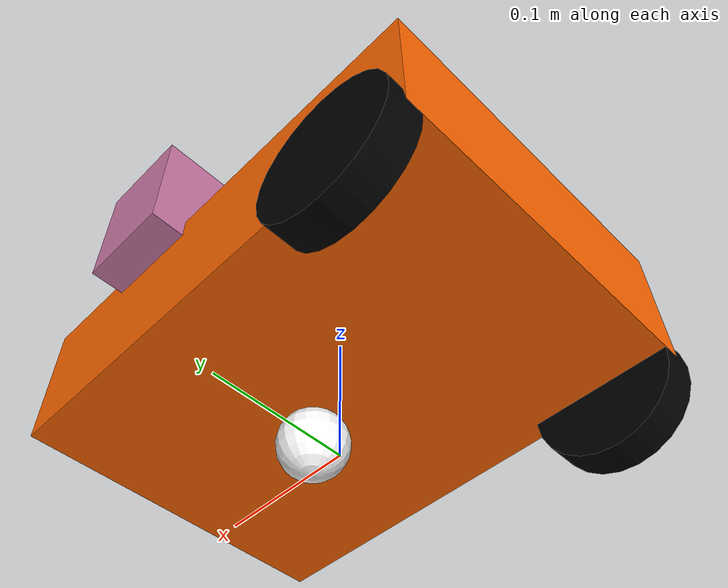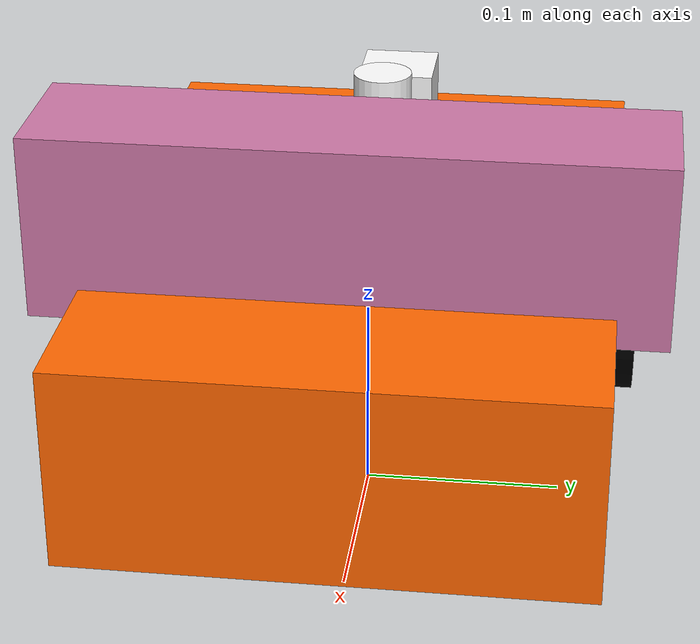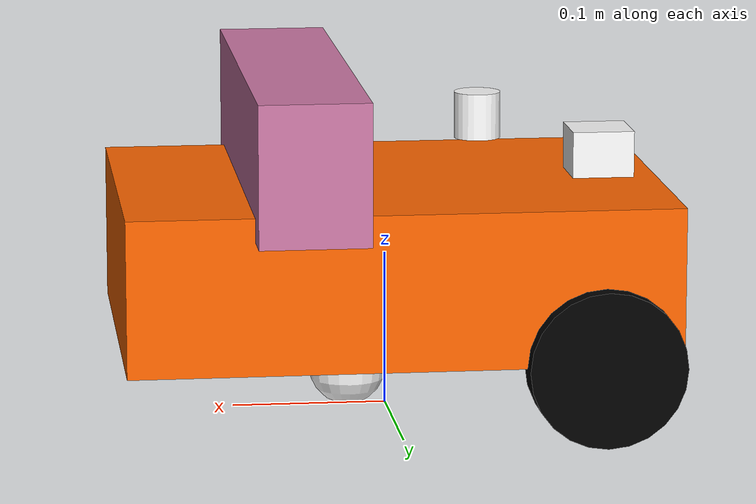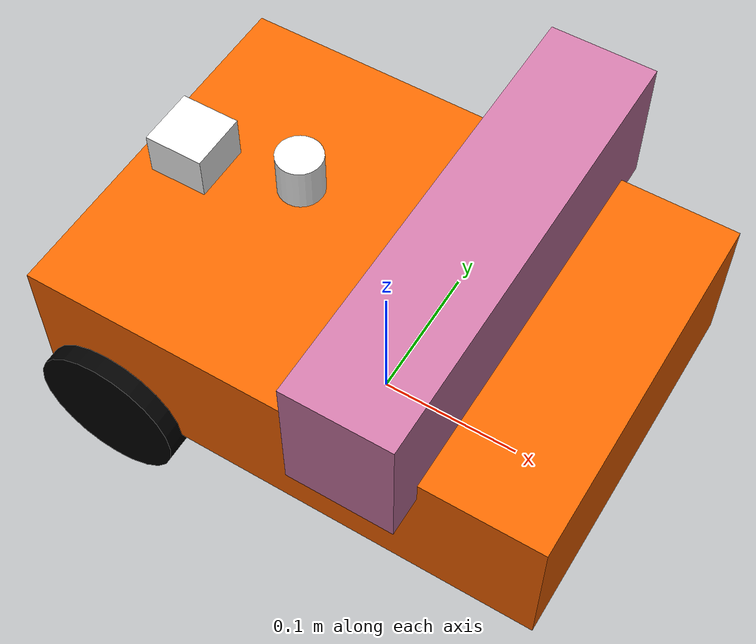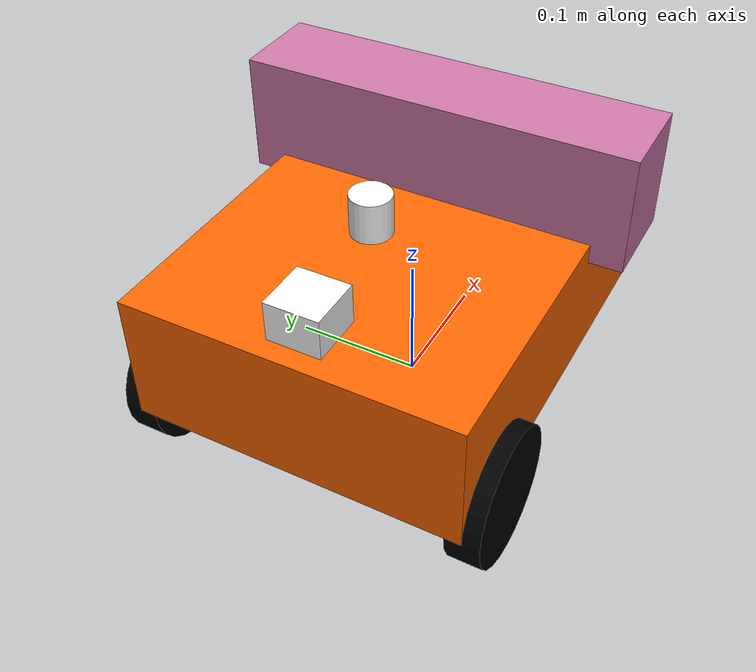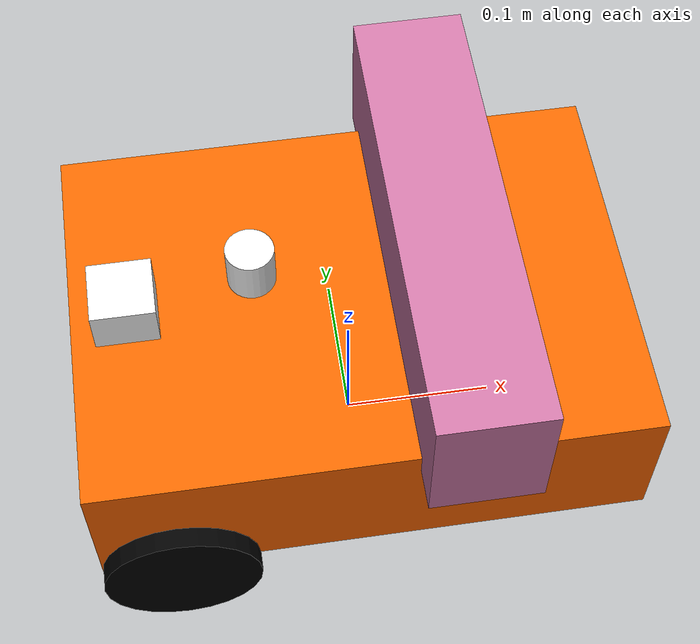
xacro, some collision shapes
<?xml version="1.0"?>
<robot name="mbot" xmlns:xacro="http://www.ros.org/wiki/xacro">

    <xacro:include filename="$(find mbot_description)/urdf/mbot_base_gazebo.xacro" />
    <xacro:include filename="$(find mbot_description)/urdf/sensors/kinect_gazebo.xacro" />
    <xacro:include filename="$(find mbot_description)/urdf/sensors/lidar_gazebo.xacro" />

    <mbot_base_gazebo/>

    <xacro:property name="kinect_offset_x" value="0.06" />
    <xacro:property name="kinect_offset_y" value="0" />
    <xacro:property name="kinect_offset_z" value="0.08" />
    <!-- kinect -->
    <joint name="kinect_joint" type="fixed">
        <origin xyz="${kinect_offset_x} ${kinect_offset_y} ${kinect_offset_z}" rpy="0 0 0" />
        <parent link="base_link"/>
        <child link="kinect_link"/>
    </joint>

    <kinect_camera/>

    <xacro:property name="lidar_offset_x" value="-0.06" />
    <xacro:property name="lidar_offset_y" value="0" />
    <xacro:property name="lidar_offset_z" value="0.09" />

    <!-- lidar -->
    <joint name="lidar_joint" type="fixed">
        <origin xyz="${lidar_offset_x} ${lidar_offset_y} ${lidar_offset_z}" rpy="0 0 0" />
        <parent link="base_link"/>
        <child link="laser_link"/>
    </joint>

    <rplidar />

</robot>

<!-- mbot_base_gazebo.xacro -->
<robot name="mbot" xmlns:xacro="http://www.ros.org/wiki/xacro">

 	<!-- PROPERTY LIST -->
	<xacro:property name="M_PI" value="3.1415926"/>
	<xacro:property name="base_mass"   value="0.02" />
	<xacro:property name="base_length" value="0.35"/>
    	<xacro:property name="base_width" value="0.25"/>
    	<xacro:property name="base_hight" value="0.1"/>

	<xacro:property name="box_mass"   value="0.005" />
	<xacro:property name="box_length" value="0.04"/>
    	<xacro:property name="box_width" value="0.04"/>
    	<xacro:property name="box_hight" value="0.03"/>

    	<xacro:property name="wheel_mass"   value="0.002" />
    	<xacro:property name="wheel_radius" value="0.05"/>
    	<xacro:property name="wheel_length" value="0.025"/>

        <xacro:property name="caster_mass"    value="0.0005" />
        <xacro:property name="caster_radius"  value="0.025"/> <!-- wheel_radius - ( base_length/2 - wheel_joint_z) -->
        <xacro:property name="caster_joint_x" value="0.18"/>

	<!-- Defining the colors used in this robot -->
    	<material name="yellow">
        	<color rgba="1 0.4 0 1"/>
    	</material>
    	<material name="black">
        	<color rgba="0 0 0 0.95"/>
    	</material>
	<material name="white">
                <color rgba="1 1 1 1"/>
        </material>

	<!-- Macro for inertia matrix -->
	<xacro:macro name="cylinder_inertial_matrix" params="m r h">
        	<inertial>
            		<mass value="${m}" />
            		<inertia ixx="${m*(3*r*r+h*h)/12}" ixy="0" ixz="0"
				 iyx="0" iyy="${m*(3*r*r+h*h)/12}" iyz="0"
                		 izx="0" izy="0" izz="${m*r*r/2}" />
        	</inertial>
    	</xacro:macro>

	<!-- Macro for inertia matrix -->
	<xacro:macro name="box_inertial_matrix" params="m l w h">
        	<inertial>
            		<mass value="${m}" />
            		<inertia ixx="${m*(w*w+h*h)/12}" ixy="0" ixz="0"
				 iyx="0" iyy="${m*(l*l+h*h)/12}" iyz="0"
                		 izx="0" izy="0" izz="${m*(l*l+w*w)/12}" />
        	</inertial>
    	</xacro:macro>

	<!-- Macro for robot wheel -->
	<xacro:macro name="wheel" params="prefix base reflectx reflecty">

	<joint name="${prefix}_wheel_joint" type="continuous">
		<origin xyz="${reflectx*(base_length/2-wheel_radius)} ${reflecty*(base_width/2)} ${-base_hight/2}" rpy="0 0 0"/>
        	<parent link="${base}"/>
        	<child link="${prefix}_wheel_link"/>
        	<axis xyz="0 1 0"/>
    	</joint>

	<link name="${prefix}_wheel_link">
        	<visual>
            		<origin xyz="0 0 0" rpy="${M_PI/2} 0 0" />
            		<geometry>
                		<cylinder radius="${wheel_radius}" length = "${wheel_length}"/>
            		</geometry>
            		<material name="black" />
        	</visual>
		<collision>
                	<origin xyz="0 0 0" rpy="${M_PI/2} 0 0" />
                	<geometry>
                	    <cylinder radius="${wheel_radius}" length = "${wheel_length}"/>
                	</geometry>
            	</collision>
		<cylinder_inertial_matrix  m="${wheel_mass}" r="${wheel_radius}" h="${wheel_length}" />
    	</link>

	<gazebo reference="${prefix}_wheel_link">
		<material>Gazebo/Gray</material>
        </gazebo>

    <!-- Macro for robot caster -->
    <xacro:macro name="caster" params="prefix reflect">
        <joint name="${prefix}_caster_joint" type="continuous">
            <origin xyz="${reflect*(base_length/2-3*wheel_radius)} 0 ${-base_hight/2 - caster_radius}" rpy="0 0 0"/>
            <parent link="base_link"/>
            <child link="${prefix}_caster_link"/>
            <axis xyz="0 1 0"/>
        </joint>

        <link name="${prefix}_caster_link">
            <visual>
                <origin xyz="0 0 0" rpy="0 0 0"/>
                <geometry>
                    <sphere radius="${caster_radius}" />
                </geometry>
                <material name="white" />
            </visual>
            <collision>
                <origin xyz="0 0 0" rpy="0 0 0"/>
                <geometry>
                    <sphere radius="${caster_radius}" />
                </geometry>
            </collision>
            <sphere_inertial_matrix  m="${caster_mass}" r="${caster_radius}" />
        </link>

        <gazebo reference="${prefix}_caster_link">
            <material>Gazebo/White</material>
        </gazebo>
    </xacro:macro>

	<!-- Transmission is important to link the joints and the controller -->
        <transmission name="${prefix}_wheel_joint_trans">
		<type>transmission_interface/SimpleTransmission</type>
	        <joint name="${prefix}_wheel_joint" >
			<hardwareInterface>hardware_interface/VelocityJointInterface</hardwareInterface>
		</joint>
            	<actuator name="${prefix}_wheel_joint_motor">
                	<hardwareInterface>hardware_interface/VelocityJointInterface</hardwareInterface>
                	<mechanicalReduction>1</mechanicalReduction>
            	</actuator>
        </transmission>

	</xacro:macro>

	<xacro:macro name="mbot_base_gazebo">
		<link name="base_footprint">
	            <visual>
	                <origin xyz="0 0 0" rpy="0 0 0" />
	                <geometry>
	                    <box size="0.001 0.001 0.001" />
	                </geometry>
	            </visual>
	        </link>

        	<gazebo reference="base_footprint">
            		<turnGravityOff>false</turnGravityOff>
        	</gazebo>

        	<joint name="base_footprint_joint" type="fixed">
            		<origin xyz="0 0 ${base_hight/2 + wheel_radius}" rpy="0 0 0" />
            		<parent link="base_footprint"/>
            		<child link="base_link" />
        	</joint>

		<link name="base_link">
			<visual>
 				<origin xyz=" 0 0 0" rpy="0 0 0" />
            			<geometry>
                			<box size="${base_length} ${base_width} ${base_hight}" />
            			</geometry>
            			<material name="yellow"/>
			</visual>
			<collision>
                		<origin xyz=" 0 0 0" rpy="0 0 0" />
                		<geometry>
                    			<box size="${base_length} ${base_width} ${base_hight}" />
               			</geometry>
            		</collision>
			<box_inertial_matrix  m="${base_mass}" l="${base_length}" w="${base_width}" h="${base_hight}" />
		</link>

		<gazebo reference="base_link">
			<material>Gazebo/Blue</material>
        	</gazebo>

		<joint name="box_link" type="fixed">
          		<origin xyz="-0.14 0 ${base_hight/2 + box_hight/2}" rpy="0 0 0" />
            		<parent link="base_link"/>
            		<child link="box_link" />
        	</joint>

		<link name="box_link">
			<visual>
 				<origin xyz=" 0 0 0" rpy="0 0 0" />
            			<geometry>
                			<box size="${box_length} ${box_width} ${box_hight}" />
            			</geometry>
            			<material name="white"/>
			</visual>
			<collision>
                		<origin xyz=" 0 0 0" rpy="0 0 0" />
                		<geometry>
                    			<box size="${box_length} ${box_width} ${box_hight}" />
               			</geometry>
            		</collision>
			<box_inertial_matrix  m="${box_mass}" l="${box_length}" w="${box_width}" h="${box_hight}" />
		</link>

		<gazebo reference="box_link">
			<material>Gazebo/White</material>
        	</gazebo>

		<wheel prefix="back_left" base="base_link" reflectx="-1" reflecty="1"/>
        	<wheel prefix="back_right" base="base_link" reflectx="-1" reflecty="-1"/>
        <caster prefix="front" reflect="1"/>

		<!-- controller -->
        	<gazebo>
  			<plugin name="skid_steer_drive_controller" filename="libgazebo_ros_skid_steer_drive.so">
				<rosDebugLevel>Debug</rosDebugLevel>
                		<publishWheelTF>true</publishWheelTF>
				<publishTf>true</publishTf>
                		<publishWheelJointState>true</publishWheelJointState>
                		<alwaysOn>true</alwaysOn>
				<legacyMode>true</legacyMode>
    				<updateRate>100.0</updateRate>
    				<robotNamespace>/mbot</robotNamespace>
    				<leftRearJoint>back_left_wheel_joint</leftRearJoint>
    				<rightRearJoint>back_right_wheel_joint</rightRearJoint>
    				<wheelSeparation>${base_width}</wheelSeparation>
    				<wheelDiameter>${2*wheel_radius}</wheelDiameter>
    				<robotBaseFrame>base_footprint</robotBaseFrame>
    				<torque>30</torque>
    				<commandTopic>cmd_vel</commandTopic>
                		<odometryFrame>odom</odometryFrame>
                		<odometryTopic>odom</odometryTopic>
    				<broadcastTF>true</broadcastTF>
  			</plugin>
		</gazebo>

	</xacro:macro>
</robot>

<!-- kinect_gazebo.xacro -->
<robot xmlns:xacro="http://www.ros.org/wiki/xacro" name="laser">
	<xacro:macro name="kinect_camera" params="prefix:=kinect">
		<link name="${prefix}_link">
	        	<visual>
        	    	<origin xyz="0 0 0" rpy="0 0 ${M_PI/2}"/>
	            		<geometry>
        	        		<mesh filename="package://mbot_description/meshes/kinect.dae" />
        	    		</geometry>
        		</visual>
			<collision>
		                <geometry>
		                	<box size="0.07 0.3 0.09"/>
		                </geometry>
		        </collision>
    		</link>

		<joint name="${prefix}_optical_joint" type="fixed">
            		<origin xyz="0 0 0" rpy="-1.5708 0 -1.5708"/>
            		<parent link="${prefix}_link"/>
            		<child link="${prefix}_frame_optical"/>
        	</joint>

                <link name="${prefix}_frame_optical"/>

		<gazebo reference="${prefix}_link">
            		<sensor type="depth" name="${prefix}">
                		<always_on>true</always_on>
                		<update_rate>20.0</update_rate>
                		<camera>
                    			<horizontal_fov>${60.0*M_PI/180.0}</horizontal_fov>
                    			<image>
                        			<format>R8G8B8</format>
                        			<width>640</width>
                        			<height>480</height>
                    			</image>
                    			<clip>
                        			<near>0.05</near>
                        			<far>8.0</far>
                    			</clip>
                		</camera>
                		<plugin name="kinect_${prefix}_controller" filename="libgazebo_ros_openni_kinect.so">
                    			<cameraName>${prefix}</cameraName>
                    			<alwaysOn>true</alwaysOn>
                    			<updateRate>10</updateRate>
                    			<imageTopicName>rgb/image_raw</imageTopicName>
                    			<depthImageTopicName>depth/image_raw</depthImageTopicName>
                    			<pointCloudTopicName>depth/points</pointCloudTopicName>
                    			<cameraInfoTopicName>rgb/camera_info</cameraInfoTopicName>
                   			<depthImageCameraInfoTopicName>depth/camera_info</depthImageCameraInfoTopicName>
                    			<frameName>${prefix}_frame_optical</frameName>
                    			<baseline>0.1</baseline>
                    			<distortion_k1>0.0</distortion_k1>
                    			<distortion_k2>0.0</distortion_k2>
                    			<distortion_k3>0.0</distortion_k3>
                    			<distortion_t1>0.0</distortion_t1>
                    			<distortion_t2>0.0</distortion_t2>
                    			<pointCloudCutoff>0.4</pointCloudCutoff>
                		</plugin>
            		</sensor>
        	</gazebo>
	</xacro:macro>
</robot>

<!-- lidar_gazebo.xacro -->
<robot xmlns:xacro="http://www.ros.org/wiki/xacro" name="laser">

    <xacro:macro name="rplidar" params="prefix:=laser">
        <!-- Create laser reference frame -->
        <link name="${prefix}_link">
            <inertial>
                <mass value="0.1" />
                <origin xyz="0 0 0" />
                <inertia ixx="0.01" ixy="0.0" ixz="0.0"
                         iyy="0.01" iyz="0.0"
                         izz="0.01" />
            </inertial>

            <visual>
                <origin xyz=" 0 0 0 " rpy="0 0 0" />
                <geometry>
                    <cylinder length="0.03" radius="0.015"/>
                </geometry>
                <material name="white"/>
            </visual>

            <collision>
                <origin xyz="0.0 0.0 0.0" rpy="0 0 0" />
                <geometry>
                    <cylinder length="0.03" radius="0.015"/>
                </geometry>
            </collision>
        </link>
        <gazebo reference="${prefix}_link">
            <material>Gazebo/Black</material>
        </gazebo>

        <gazebo reference="${prefix}_link">
            <sensor type="ray" name="rplidar">
                <pose>0 0 0 0 0 0</pose>
                <visualize>true</visualize>
                <update_rate>20</update_rate>
                <ray>
                    <scan>
                      <horizontal>
                        <samples>360</samples>
                        <resolution>1</resolution>
                        <min_angle>-3.141593</min_angle>
                        <max_angle>3.141593</max_angle>
                      </horizontal>
                    </scan>
                    <range>
                      <min>0.25</min>
                      <max>10.0</max>
                      <resolution>0.01</resolution>
                    </range>
                    <noise>
                      <type>gaussian</type>
                      <mean>0.0</mean>
                      <stddev>0.01</stddev>
                    </noise>
                </ray>
                <plugin name="gazebo_rplidar" filename="libgazebo_ros_laser.so">
                    <topicName>/scan</topicName>
                    <frameName>laser_link</frameName>
                </plugin>
            </sensor>
        </gazebo>

    </xacro:macro>
</robot>
